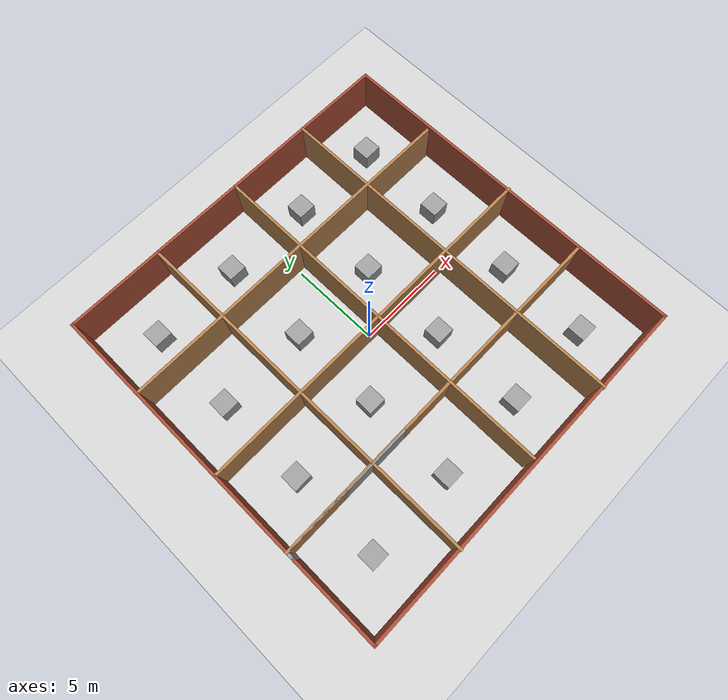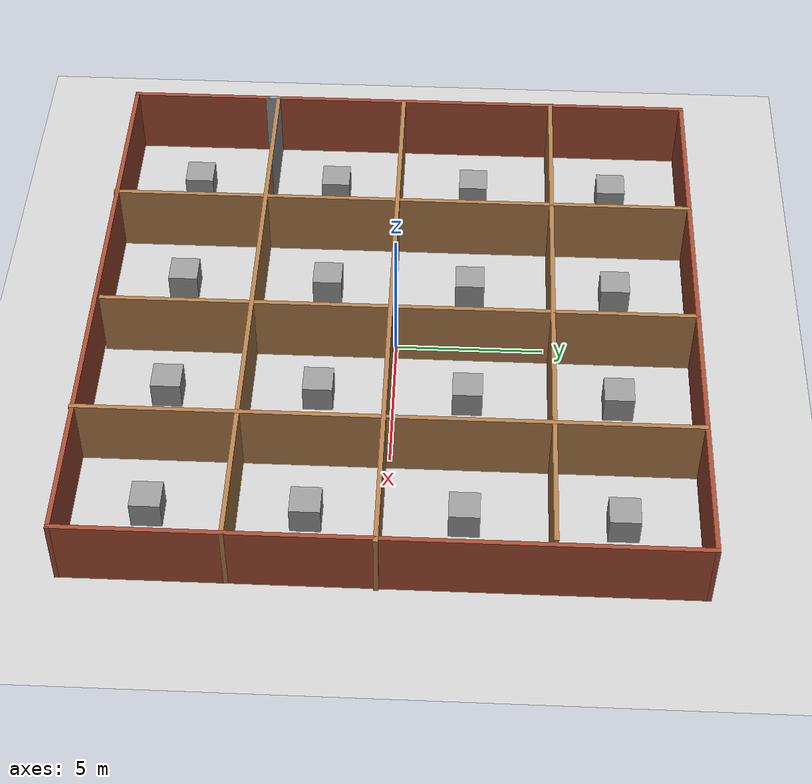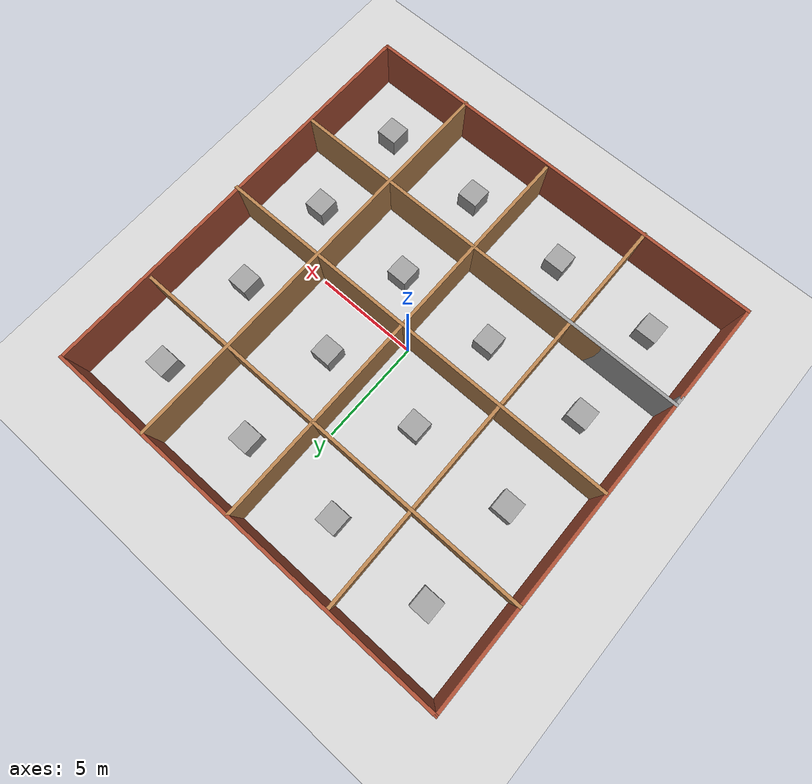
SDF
<sdf version="1.6">
 <world name="default">
  <light name="sun" type="directional">
   <pose>0 0 10 0 -0 0</pose>
   <diffuse>0.8 0.8 0.8 1</diffuse>
   <specular>0.1 0.1 0.1 1</specular>
   <attenuation>
    <range>1000</range>
    <constant>0.9</constant>
    <linear>0.01</linear>
    <quadratic>0.001</quadratic>
   </attenuation>
   <direction>-0.5 0.5 -1</direction>
  </light>
  <model name="ground_plane">
   <static>1</static>
   <link name="link">
    <collision name="collision">
     <geometry><plane><normal>0 0 1</normal><size>100 100</size></plane></geometry>
     <surface><friction><ode><mu>100</mu><mu2>50</mu2></ode></friction></surface>
    </collision>
    <visual name="visual">
     <cast_shadows>0</cast_shadows>
     <geometry><plane><normal>0 0 1</normal><size>100 100</size></plane></geometry>
     <material>
      <script><uri>file://media/materials/scripts/gazebo.material</uri><name>Gazebo/Grey</name></script>
     </material>
    </visual>
   </link>
  </model>
  <gravity>0 0 -9.8</gravity>
  <magnetic_field>6e-06 2.3e-05 -4.2e-05</magnetic_field>
  <atmosphere type="adiabatic"/>
  <physics name="default_physics" default="0" type="ode">
   <max_step_size>0.001</max_step_size>
   <real_time_factor>1</real_time_factor>
   <real_time_update_rate>1000</real_time_update_rate>
  </physics>
  <scene><ambient>0.4 0.4 0.4 1</ambient><background>0.7 0.7 0.7 1</background><shadows>1</shadows></scene>
  <spherical_coordinates>
   <surface_model>EARTH_WGS84</surface_model>
   <latitude_deg>0</latitude_deg>
   <longitude_deg>0</longitude_deg>
   <elevation>0</elevation>
   <heading_deg>0</heading_deg>
  </spherical_coordinates>
  <model name="grid_world">
   <pose>0.03457 -0.032286 0 0 -0 0</pose>
   <link name="Wall_15">
    <collision name="Wall_15_Collision">
     <geometry><box><size>20.25 0.15 2.5</size></box></geometry>
     <pose>0 0 1.25 0 -0 0</pose>
    </collision>
    <visual name="Wall_15_Visual">
     <pose>0 0 1.25 0 -0 0</pose>
     <geometry><box><size>20.25 0.15 2.5</size></box></geometry>
     <material>
      <script><uri>file://media/materials/scripts/gazebo.material</uri><name>Gazebo/Wood</name></script>
      <ambient>1 1 1 1</ambient>
     </material>
    </visual>
    <pose>0.034554 -0.135565 0 0 -0 0</pose>
   </link>
   <link name="Wall_18">
    <collision name="Wall_18_Collision">
     <geometry><box><size>20 0.15 2.5</size></box></geometry>
     <pose>0 0 1.25 0 -0 0</pose>
    </collision>
    <visual name="Wall_18_Visual">
     <pose>0 0 1.25 0 -0 0</pose>
     <geometry><box><size>20 0.15 2.5</size></box></geometry>
     <material>
      <script><uri>file://media/materials/scripts/gazebo.material</uri><name>Gazebo/Wood</name></script>
      <ambient>1 1 1 1</ambient>
     </material>
    </visual>
    <pose>-0.143949 5.26819 0 0 -0 0</pose>
   </link>
   <link name="Wall_2">
    <collision name="Wall_2_Collision">
     <geometry><box><size>7.5 0.15 2.5</size></box></geometry>
     <pose>0 0 1.25 0 -0 0</pose>
    </collision>
    <visual name="Wall_2_Visual">
     <pose>0 0 1.25 0 -0 0</pose>
     <geometry><box><size>7.5 0.15 2.5</size></box></geometry>
     <material>
      <script><uri>file://media/materials/scripts/gazebo.material</uri><name>Gazebo/Grey</name></script>
      <ambient>1 1 1 1</ambient>
     </material>
    </visual>
    <pose>-6.40955 -4.77991 0 0 -0 3.14159</pose>
   </link>
   <link name="Wall_21">
    <collision name="Wall_21_Collision">
     <geometry><box><size>20.25 0.15 2.5</size></box></geometry>
     <pose>0 0 1.25 0 -0 0</pose>
    </collision>
    <visual name="Wall_21_Visual">
     <pose>0 0 1.25 0 -0 0</pose>
     <geometry><box><size>20.25 0.15 2.5</size></box></geometry>
     <material>
      <script><uri>file://media/materials/scripts/gazebo.material</uri><name>Gazebo/Wood</name></script>
      <ambient>1 1 1 1</ambient>
     </material>
    </visual>
    <pose>-4.7722 -0.02009 0 0 0 -1.5708</pose>
   </link>
   <link name="Wall_3">
    <collision name="Wall_3_Collision">
     <geometry><box><size>15 0.15 2.5</size></box></geometry>
     <pose>0 0 1.25 0 -0 0</pose>
    </collision>
    <visual name="Wall_3_Visual">
     <pose>0 0 1.25 0 -0 0</pose>
     <geometry><box><size>15 0.15 2.5</size></box></geometry>
     <material>
      <script><uri>file://media/materials/scripts/gazebo.material</uri><name>Gazebo/Bricks</name></script>
      <ambient>1 1 1 1</ambient>
     </material>
    </visual>
    <pose>-10.0846 2.64509 0 0 -0 1.5708</pose>
   </link>
   <link name="Wall_30">
    <collision name="Wall_30_Collision">
     <geometry><box><size>20 0.15 2.5</size></box></geometry>
     <pose>0 0 1.25 0 -0 0</pose>
    </collision>
    <visual name="Wall_30_Visual">
     <pose>0 0 1.25 0 -0 0</pose>
     <geometry><box><size>20 0.15 2.5</size></box></geometry>
     <material>
      <script><uri>file://media/materials/scripts/gazebo.material</uri><name>Gazebo/Wood</name></script>
      <ambient>1 1 1 1</ambient>
     </material>
    </visual>
    <pose>0.417542 0.105483 0 0 -0 1.5708</pose>
   </link>
   <link name="Wall_37">
    <collision name="Wall_37_Collision">
     <geometry><box><size>20.25 0.15 2.5</size></box></geometry>
     <pose>0 0 1.25 0 -0 0</pose>
    </collision>
    <visual name="Wall_37_Visual">
     <pose>0 0 1.25 0 -0 0</pose>
     <geometry><box><size>20.25 0.15 2.5</size></box></geometry>
     <material>
      <script><uri>file://media/materials/scripts/gazebo.material</uri><name>Gazebo/Wood</name></script>
      <ambient>1 1 1 1</ambient>
     </material>
    </visual>
    <pose>5.23277 -0.02009 0 0 0 -1.5708</pose>
   </link>
   <link name="Wall_4">
    <collision name="Wall_4_Collision">
     <geometry><box><size>20.25 0.15 2.5</size></box></geometry>
     <pose>0 0 1.25 0 -0 0</pose>
    </collision>
    <visual name="Wall_4_Visual">
     <pose>0 0 1.25 0 -0 0</pose>
     <geometry><box><size>20.25 0.15 2.5</size></box></geometry>
     <material>
      <script><uri>file://media/materials/scripts/gazebo.material</uri><name>Gazebo/Bricks</name></script>
      <ambient>1 1 1 1</ambient>
     </material>
    </visual>
    <pose>-0.034553 10.0701 0 0 -0 0</pose>
   </link>
   <link name="Wall_5">
    <collision name="Wall_5_Collision">
     <geometry><box><size>20.25 0.15 2.5</size></box></geometry>
     <pose>0 0 1.25 0 -0 0</pose>
    </collision>
    <visual name="Wall_5_Visual">
     <pose>0 0 1.25 0 -0 0</pose>
     <geometry><box><size>20.25 0.15 2.5</size></box></geometry>
     <material>
      <script><uri>file://media/materials/scripts/gazebo.material</uri><name>Gazebo/Bricks</name></script>
      <ambient>1 1 1 1</ambient>
     </material>
    </visual>
    <pose>10.0154 0.020089 0 0 0 -1.5708</pose>
   </link>
   <link name="Wall_6">
    <collision name="Wall_6_Collision">
     <geometry><box><size>20.25 0.15 2.5</size></box></geometry>
     <pose>0 0 1.25 0 -0 0</pose>
    </collision>
    <visual name="Wall_6_Visual">
     <pose>0 0 1.25 0 -0 0</pose>
     <geometry><box><size>20.25 0.15 2.5</size></box></geometry>
     <material>
      <script><uri>file://media/materials/scripts/gazebo.material</uri><name>Gazebo/Bricks</name></script>
      <ambient>1 1 1 1</ambient>
     </material>
    </visual>
    <pose>-0.034553 -10.0299 0 0 -0 3.14159</pose>
   </link>
   <link name="Wall_7">
    <collision name="Wall_7_Collision">
     <geometry><box><size>5 0.15 2.5</size></box></geometry>
     <pose>0 0 1.25 0 -0 0</pose>
    </collision>
    <visual name="Wall_7_Visual">
     <pose>0 0 1.25 0 -0 0</pose>
     <geometry><box><size>5 0.15 2.5</size></box></geometry>
     <material>
      <script><uri>file://media/materials/scripts/gazebo.material</uri><name>Gazebo/Bricks</name></script>
      <ambient>1 1 1 1</ambient>
     </material>
    </visual>
    <pose>-10.0846 -7.60491 0 0 -0 1.5708</pose>
   </link>
   <link name="Wall_8">
    <collision name="Wall_8_Collision">
     <geometry><box><size>0.55 0.15 2.5</size></box></geometry>
     <pose>0 0 1.25 0 -0 0</pose>
    </collision>
    <visual name="Wall_8_Visual">
     <pose>0 0 1.25 0 -0 0</pose>
     <geometry><box><size>0.55 0.15 2.5</size></box></geometry>
     <material>
      <script><uri>file://media/materials/scripts/gazebo.material</uri><name>Gazebo/Grey</name></script>
      <ambient>1 1 1 1</ambient>
     </material>
    </visual>
    <pose>-10.0846 -4.97991 0 0 -0 1.5708</pose>
   </link>
   <link name="Wall_9">
    <collision name="Wall_9_Collision">
     <geometry><box><size>20.25 0.15 2.5</size></box></geometry>
     <pose>0 0 1.25 0 -0 0</pose>
    </collision>
    <visual name="Wall_9_Visual">
     <pose>0 0 1.25 0 -0 0</pose>
     <geometry><box><size>20.25 0.15 2.5</size></box></geometry>
     <material>
      <script><uri>file://media/materials/scripts/gazebo.material</uri><name>Gazebo/Wood</name></script>
      <ambient>1 1 1 1</ambient>
     </material>
    </visual>
    <pose>-0.034553 -4.77991 0 0 -0 0</pose>
   </link>
   <static>1</static>
  </model>
  <model name="unit_box_0">
   <pose>7.52587 -7.54697 0.499995 -1e-05 0 0</pose>
   <link name="link">
    <inertial>
     <mass>1</mass>
     <inertia>
      <ixx>0.166667</ixx>
      <ixy>0</ixy>
      <ixz>0</ixz>
      <iyy>0.166667</iyy>
      <iyz>0</iyz>
      <izz>0.166667</izz>
     </inertia>
    </inertial>
    <collision name="collision"><geometry><box><size>1 1 1</size></box></geometry></collision>
    <visual name="visual">
     <geometry><box><size>1 1 1</size></box></geometry>
     <material>
      <script><name>Gazebo/Grey</name><uri>file://media/materials/scripts/gazebo.material</uri></script>
     </material>
    </visual>
   </link>
  </model>
  <model name="unit_box_1">
   <pose>2.51667 -7.51861 0.499995 0 1e-05 0</pose>
   <link name="link">
    <inertial>
     <mass>1</mass>
     <inertia>
      <ixx>0.166667</ixx>
      <ixy>0</ixy>
      <ixz>0</ixz>
      <iyy>0.166667</iyy>
      <iyz>0</iyz>
      <izz>0.166667</izz>
     </inertia>
    </inertial>
    <collision name="collision"><geometry><box><size>1 1 1</size></box></geometry></collision>
    <visual name="visual">
     <geometry><box><size>1 1 1</size></box></geometry>
     <material>
      <script><name>Gazebo/Grey</name><uri>file://media/materials/scripts/gazebo.material</uri></script>
     </material>
    </visual>
   </link>
  </model>
  <model name="unit_box_2">
   <pose>-2.48767 -7.53552 0.499995 -1e-05 0 0</pose>
   <link name="link">
    <inertial>
     <mass>1</mass>
     <inertia>
      <ixx>0.166667</ixx>
      <ixy>0</ixy>
      <ixz>0</ixz>
      <iyy>0.166667</iyy>
      <iyz>0</iyz>
      <izz>0.166667</izz>
     </inertia>
    </inertial>
    <collision name="collision"><geometry><box><size>1 1 1</size></box></geometry></collision>
    <visual name="visual">
     <geometry><box><size>1 1 1</size></box></geometry>
     <material>
      <script><name>Gazebo/Grey</name><uri>file://media/materials/scripts/gazebo.material</uri></script>
     </material>
    </visual>
   </link>
  </model>
  <model name="unit_box_3">
   <pose>-7.52872 -7.53452 0.499995 0 1e-05 0</pose>
   <link name="link">
    <inertial>
     <mass>1</mass>
     <inertia>
      <ixx>0.166667</ixx>
      <ixy>0</ixy>
      <ixz>0</ixz>
      <iyy>0.166667</iyy>
      <iyz>0</iyz>
      <izz>0.166667</izz>
     </inertia>
    </inertial>
    <collision name="collision"><geometry><box><size>1 1 1</size></box></geometry></collision>
    <visual name="visual">
     <geometry><box><size>1 1 1</size></box></geometry>
     <material>
      <script><name>Gazebo/Grey</name><uri>file://media/materials/scripts/gazebo.material</uri></script>
     </material>
    </visual>
   </link>
  </model>
  <model name="unit_box_4">
   <pose>7.52454 -2.52033 0.499995 -1e-05 0 0</pose>
   <link name="link">
    <inertial>
     <mass>1</mass>
     <inertia>
      <ixx>0.166667</ixx>
      <ixy>0</ixy>
      <ixz>0</ixz>
      <iyy>0.166667</iyy>
      <iyz>0</iyz>
      <izz>0.166667</izz>
     </inertia>
    </inertial>
    <collision name="collision"><geometry><box><size>1 1 1</size></box></geometry></collision>
    <visual name="visual">
     <geometry><box><size>1 1 1</size></box></geometry>
     <material>
      <script><name>Gazebo/Grey</name><uri>file://media/materials/scripts/gazebo.material</uri></script>
     </material>
    </visual>
   </link>
  </model>
  <model name="unit_box_5">
   <pose>2.4481 -2.48426 0.499995 0 1e-05 0</pose>
   <link name="link">
    <inertial>
     <mass>1</mass>
     <inertia>
      <ixx>0.166667</ixx>
      <ixy>0</ixy>
      <ixz>0</ixz>
      <iyy>0.166667</iyy>
      <iyz>0</iyz>
      <izz>0.166667</izz>
     </inertia>
    </inertial>
    <collision name="collision"><geometry><box><size>1 1 1</size></box></geometry></collision>
    <visual name="visual">
     <geometry><box><size>1 1 1</size></box></geometry>
     <material>
      <script><name>Gazebo/Grey</name><uri>file://media/materials/scripts/gazebo.material</uri></script>
     </material>
    </visual>
   </link>
  </model>
  <model name="unit_box_6">
   <pose>-2.50514 -2.50081 0.499995 -1e-05 0 0</pose>
   <link name="link">
    <inertial>
     <mass>1</mass>
     <inertia>
      <ixx>0.166667</ixx>
      <ixy>0</ixy>
      <ixz>0</ixz>
      <iyy>0.166667</iyy>
      <iyz>0</iyz>
      <izz>0.166667</izz>
     </inertia>
    </inertial>
    <collision name="collision"><geometry><box><size>1 1 1</size></box></geometry></collision>
    <visual name="visual">
     <geometry><box><size>1 1 1</size></box></geometry>
     <material>
      <script><name>Gazebo/Grey</name><uri>file://media/materials/scripts/gazebo.material</uri></script>
     </material>
    </visual>
   </link>
  </model>
  <model name="unit_box_7">
   <pose>-7.529 -2.53499 0.499995 0 1e-05 0</pose>
   <link name="link">
    <inertial>
     <mass>1</mass>
     <inertia>
      <ixx>0.166667</ixx>
      <ixy>0</ixy>
      <ixz>0</ixz>
      <iyy>0.166667</iyy>
      <iyz>0</iyz>
      <izz>0.166667</izz>
     </inertia>
    </inertial>
    <collision name="collision"><geometry><box><size>1 1 1</size></box></geometry></collision>
    <visual name="visual">
     <geometry><box><size>1 1 1</size></box></geometry>
     <material>
      <script><name>Gazebo/Grey</name><uri>file://media/materials/scripts/gazebo.material</uri></script>
     </material>
    </visual>
   </link>
  </model>
  <model name="unit_box_8">
   <pose>7.51375 2.47632 0.499995 -1e-05 0 0</pose>
   <link name="link">
    <inertial>
     <mass>1</mass>
     <inertia>
      <ixx>0.166667</ixx>
      <ixy>0</ixy>
      <ixz>0</ixz>
      <iyy>0.166667</iyy>
      <iyz>0</iyz>
      <izz>0.166667</izz>
     </inertia>
    </inertial>
    <collision name="collision"><geometry><box><size>1 1 1</size></box></geometry></collision>
    <visual name="visual">
     <geometry><box><size>1 1 1</size></box></geometry>
     <material>
      <script><name>Gazebo/Grey</name><uri>file://media/materials/scripts/gazebo.material</uri></script>
     </material>
    </visual>
   </link>
  </model>
  <model name="unit_box_9">
   <pose>2.47743 2.4767 0.499995 0 1e-05 0</pose>
   <link name="link">
    <inertial>
     <mass>1</mass>
     <inertia>
      <ixx>0.166667</ixx>
      <ixy>0</ixy>
      <ixz>0</ixz>
      <iyy>0.166667</iyy>
      <iyz>0</iyz>
      <izz>0.166667</izz>
     </inertia>
    </inertial>
    <collision name="collision"><geometry><box><size>1 1 1</size></box></geometry></collision>
    <visual name="visual">
     <geometry><box><size>1 1 1</size></box></geometry>
     <material>
      <script><name>Gazebo/Grey</name><uri>file://media/materials/scripts/gazebo.material</uri></script>
     </material>
    </visual>
   </link>
  </model>
  <model name="unit_box_10">
   <pose>-2.51706 2.46374 0.499995 -1e-05 0 0</pose>
   <link name="link">
    <inertial>
     <mass>1</mass>
     <inertia>
      <ixx>0.166667</ixx>
      <ixy>0</ixy>
      <ixz>0</ixz>
      <iyy>0.166667</iyy>
      <iyz>0</iyz>
      <izz>0.166667</izz>
     </inertia>
    </inertial>
    <collision name="collision"><geometry><box><size>1 1 1</size></box></geometry></collision>
    <visual name="visual">
     <geometry><box><size>1 1 1</size></box></geometry>
     <material>
      <script><name>Gazebo/Grey</name><uri>file://media/materials/scripts/gazebo.material</uri></script>
     </material>
    </visual>
   </link>
  </model>
  <model name="unit_box_11">
   <pose>-7.53796 2.48353 0.499995 0 1e-05 0</pose>
   <link name="link">
    <inertial>
     <mass>1</mass>
     <inertia>
      <ixx>0.166667</ixx>
      <ixy>0</ixy>
      <ixz>0</ixz>
      <iyy>0.166667</iyy>
      <iyz>0</iyz>
      <izz>0.166667</izz>
     </inertia>
    </inertial>
    <collision name="collision"><geometry><box><size>1 1 1</size></box></geometry></collision>
    <visual name="visual">
     <geometry><box><size>1 1 1</size></box></geometry>
     <material>
      <script><name>Gazebo/Grey</name><uri>file://media/materials/scripts/gazebo.material</uri></script>
     </material>
    </visual>
   </link>
  </model>
  <model name="unit_box_12">
   <pose>7.50182 7.4974 0.499995 -1e-05 0 0</pose>
   <link name="link">
    <inertial>
     <mass>1</mass>
     <inertia>
      <ixx>0.166667</ixx>
      <ixy>0</ixy>
      <ixz>0</ixz>
      <iyy>0.166667</iyy>
      <iyz>0</iyz>
      <izz>0.166667</izz>
     </inertia>
    </inertial>
    <collision name="collision"><geometry><box><size>1 1 1</size></box></geometry></collision>
    <visual name="visual">
     <geometry><box><size>1 1 1</size></box></geometry>
     <material>
      <script><name>Gazebo/Grey</name><uri>file://media/materials/scripts/gazebo.material</uri></script>
     </material>
    </visual>
   </link>
  </model>
  <model name="unit_box_13">
   <pose>2.48467 7.48449 0.499995 0 1e-05 0</pose>
   <link name="link">
    <inertial>
     <mass>1</mass>
     <inertia>
      <ixx>0.166667</ixx>
      <ixy>0</ixy>
      <ixz>0</ixz>
      <iyy>0.166667</iyy>
      <iyz>0</iyz>
      <izz>0.166667</izz>
     </inertia>
    </inertial>
    <collision name="collision"><geometry><box><size>1 1 1</size></box></geometry></collision>
    <visual name="visual">
     <geometry><box><size>1 1 1</size></box></geometry>
     <material>
      <script><name>Gazebo/Grey</name><uri>file://media/materials/scripts/gazebo.material</uri></script>
     </material>
    </visual>
   </link>
  </model>
  <model name="unit_box_14">
   <pose>-2.49111 7.49929 0.499995 -1e-05 0 0</pose>
   <link name="link">
    <inertial>
     <mass>1</mass>
     <inertia>
      <ixx>0.166667</ixx>
      <ixy>0</ixy>
      <ixz>0</ixz>
      <iyy>0.166667</iyy>
      <iyz>0</iyz>
      <izz>0.166667</izz>
     </inertia>
    </inertial>
    <collision name="collision"><geometry><box><size>1 1 1</size></box></geometry></collision>
    <visual name="visual">
     <geometry><box><size>1 1 1</size></box></geometry>
     <material>
      <script><name>Gazebo/Grey</name><uri>file://media/materials/scripts/gazebo.material</uri></script>
     </material>
    </visual>
   </link>
  </model>
  <model name="unit_box_15">
   <pose>-7.49344 7.49071 0.5 0 -0 0</pose>
   <link name="link">
    <inertial>
     <mass>1</mass>
     <inertia>
      <ixx>0.166667</ixx>
      <ixy>0</ixy>
      <ixz>0</ixz>
      <iyy>0.166667</iyy>
      <iyz>0</iyz>
      <izz>0.166667</izz>
     </inertia>
    </inertial>
    <collision name="collision"><geometry><box><size>1 1 1</size></box></geometry></collision>
    <visual name="visual">
     <geometry><box><size>1 1 1</size></box></geometry>
     <material>
      <script><name>Gazebo/Grey</name><uri>file://media/materials/scripts/gazebo.material</uri></script>
     </material>
    </visual>
   </link>
  </model>
 </world>
</sdf>
